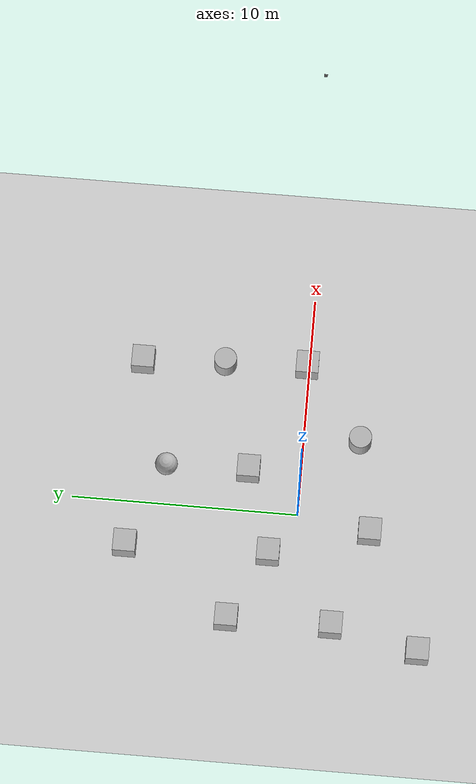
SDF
<?xml version="1.0"?>
<sdf version='1.9'>
  <world name='empty_world'>
    <model name='aerial_camera'>
      <static>true</static>
      <pose>0 0 50 0 1.5708 0</pose>
      <link name='camera_link'>
        <visual name='camera_visual'>
          <geometry>
            <box>
              <size>0.1 0.1 0.05</size>
            </box>
          </geometry>
          <material>
            <ambient>0.2 0.2 0.2 1</ambient>
            <diffuse>0.4 0.4 0.4 1</diffuse>
            <specular>0.8 0.8 0.8 1</specular>
          </material>
        </visual>

        <sensor name='aerial_camera_sensor' type='camera'>
          <pose>0 0 0 0 0 0</pose>
          <camera>
            <horizontal_fov>1.047</horizontal_fov>
            <image>
              <width>1920</width>
              <height>1080</height>
              <format>R8G8B8</format>
            </image>
            <clip>
              <near>0.1</near>
              <far>1000</far>
            </clip>
            <noise>
              <type>gaussian</type>
              <mean>0.0</mean>
              <stddev>0.007</stddev>
            </noise>
          </camera>
          <always_on>1</always_on>
          <update_rate>30</update_rate>
          <visualize>true</visualize>
          <topic>/drone_image</topic>

        </sensor>
      </link>
    </model>
    <model name='ground_plane'>
      <static>true</static>
      <link name='link'>
        <collision name='collision'>
          <geometry>
            <plane>
              <normal>0 0 1</normal>
              <size>1 1</size>
            </plane>
          </geometry>
          <surface>
            <friction>
              <ode/>
            </friction>
            <bounce/>
            <contact/>
          </surface>
        </collision>
        <visual name='visual'>
          <geometry>
            <plane>
              <normal>0 0 1</normal>
              <size>100 100</size>
            </plane>
          </geometry>
          <material>
            <ambient>0.8 0.8 0.8 1</ambient>
            <diffuse>0.8 0.8 0.8 1</diffuse>
            <specular>0.8 0.8 0.8 1</specular>
          </material>
        </visual>
        <pose>0 0 0 0 -0 0</pose>
        <inertial>
          <pose>0 0 0 0 -0 0</pose>
          <mass>1</mass>
          <inertia>
            <ixx>1</ixx>
            <ixy>0</ixy>
            <ixz>0</ixz>
            <iyy>1</iyy>
            <iyz>0</iyz>
            <izz>1</izz>
          </inertia>
        </inertial>
        <enable_wind>false</enable_wind>
      </link>
      <pose>0 0 0 0 -0 0</pose>
      <self_collide>false</self_collide>
    </model>
    <model name='box'>
      <pose>1.83264 2.33237 0.5 0 0 -0</pose>
      <link name='box_link'>
        <inertial>
          <inertia>
            <ixx>0.16666</ixx>
            <ixy>0</ixy>
            <ixz>0</ixz>
            <iyy>0.16666</iyy>
            <iyz>0</iyz>
            <izz>0.16666</izz>
          </inertia>
          <mass>1</mass>
          <pose>0 0 0 0 -0 0</pose>
        </inertial>
        <collision name='box_collision'>
          <geometry>
            <box>
              <size>1 1 1</size>
            </box>
          </geometry>
          <surface>
            <friction>
              <ode/>
            </friction>
            <bounce/>
            <contact/>
          </surface>
        </collision>
        <visual name='box_visual'>
          <geometry>
            <box>
              <size>1 1 1</size>
            </box>
          </geometry>
          <material>
            <ambient>0.3 0.3 0.3 1</ambient>
            <diffuse>0.7 0.7 0.7 1</diffuse>
            <specular>1 1 1 1</specular>
          </material>
        </visual>
        <pose>0 0 0 0 -0 0</pose>
        <enable_wind>false</enable_wind>
      </link>
      <static>false</static>
      <self_collide>false</self_collide>
    </model>
    <model name='box_0'>
      <pose>6.85107 0.116758 0.5 0 0 -0</pose>
      <link name='box_link'>
        <inertial>
          <inertia>
            <ixx>0.16666</ixx>
            <ixy>0</ixy>
            <ixz>0</ixz>
            <iyy>0.16666</iyy>
            <iyz>0</iyz>
            <izz>0.16666</izz>
          </inertia>
          <mass>1</mass>
          <pose>0 0 0 0 -0 0</pose>
        </inertial>
        <collision name='box_collision'>
          <geometry>
            <box>
              <size>1 1 1</size>
            </box>
          </geometry>
          <surface>
            <friction>
              <ode/>
            </friction>
            <bounce/>
            <contact/>
          </surface>
        </collision>
        <visual name='box_visual'>
          <geometry>
            <box>
              <size>1 1 1</size>
            </box>
          </geometry>
          <material>
            <ambient>0.3 0.3 0.3 1</ambient>
            <diffuse>0.7 0.7 0.7 1</diffuse>
            <specular>1 1 1 1</specular>
          </material>
          <plugin
            filename="ignition-gazebo-thermal-system"
            name="gz::sim::systems::Thermal">
            <temperature>285.0</temperature>
          </plugin>
        </visual>
        <pose>0 0 0 0 -0 0</pose>
        <enable_wind>false</enable_wind>
      </link>
      <static>false</static>
      <self_collide>false</self_collide>
    </model>
    <model name='cylinder'>
      <pose>3.54238 -2.48524 0.499999 0 0 0</pose>
      <link name='cylinder_link'>
        <inertial>
          <inertia>
            <ixx>0.14580000000000001</ixx>
            <ixy>0</ixy>
            <ixz>0</ixz>
            <iyy>0.14580000000000001</iyy>
            <iyz>0</iyz>
            <izz>0.125</izz>
          </inertia>
          <mass>1</mass>
          <pose>0 0 0 0 -0 0</pose>
        </inertial>
        <collision name='cylinder_collision'>
          <geometry>
            <cylinder>
              <radius>0.5</radius>
              <length>1</length>
            </cylinder>
          </geometry>
          <surface>
            <friction>
              <ode/>
            </friction>
            <bounce/>
            <contact/>
          </surface>
        </collision>
        <visual name='cylinder_visual'>
          <geometry>
            <cylinder>
              <radius>0.5</radius>
              <length>1</length>
            </cylinder>
          </geometry>
          <material>
            <ambient>0.3 0.3 0.3 1</ambient>
            <diffuse>0.7 0.7 0.7 1</diffuse>
            <specular>1 1 1 1</specular>
          </material>
        </visual>
        <pose>0 0 0 0 -0 0</pose>
        <enable_wind>false</enable_wind>
      </link>
      <static>false</static>
      <self_collide>false</self_collide>
    </model>
    <model name='box_1'>
      <pose>-1.9055 1.16814 0.5 0 0 -0</pose>
      <link name='box_link'>
        <inertial>
          <inertia>
            <ixx>0.16666</ixx>
            <ixy>0</ixy>
            <ixz>0</ixz>
            <iyy>0.16666</iyy>
            <iyz>0</iyz>
            <izz>0.16666</izz>
          </inertia>
          <mass>1</mass>
          <pose>0 0 0 0 -0 0</pose>
        </inertial>
        <collision name='box_collision'>
          <geometry>
            <box>
              <size>1 1 1</size>
            </box>
          </geometry>
          <surface>
            <friction>
              <ode/>
            </friction>
            <bounce/>
            <contact/>
          </surface>
        </collision>
        <visual name='box_visual'>
          <geometry>
            <box>
              <size>1 1 1</size>
            </box>
          </geometry>
          <material>
            <ambient>0.3 0.3 0.3 1</ambient>
            <diffuse>0.7 0.7 0.7 1</diffuse>
            <specular>1 1 1 1</specular>
          </material>
        </visual>
        <pose>0 0 0 0 -0 0</pose>
        <enable_wind>false</enable_wind>
      </link>
      <static>false</static>
      <self_collide>false</self_collide>
    </model>
    <model name='box_2'>
      <pose>-0.59546 -3.2054 0.5 0 0 -0</pose>
      <link name='box_link'>
        <inertial>
          <inertia>
            <ixx>0.16666</ixx>
            <ixy>0</ixy>
            <ixz>0</ixz>
            <iyy>0.16666</iyy>
            <iyz>0</iyz>
            <izz>0.16666</izz>
          </inertia>
          <mass>1</mass>
          <pose>0 0 0 0 -0 0</pose>
        </inertial>
        <collision name='box_collision'>
          <geometry>
            <box>
              <size>1 1 1</size>
            </box>
          </geometry>
          <surface>
            <friction>
              <ode/>
            </friction>
            <bounce/>
            <contact/>
          </surface>
        </collision>
        <visual name='box_visual'>
          <geometry>
            <box>
              <size>1 1 1</size>
            </box>
          </geometry>
          <material>
            <ambient>0.3 0.3 0.3 1</ambient>
            <diffuse>0.7 0.7 0.7 1</diffuse>
            <specular>1 1 1 1</specular>
          </material>
        </visual>
        <pose>0 0 0 0 -0 0</pose>
        <enable_wind>false</enable_wind>
      </link>
      <static>false</static>
      <self_collide>false</self_collide>
    </model>
    <model name='box_3'>
      <pose>-4.96532 -1.81738 0.5 0 0 -0</pose>
      <link name='box_link'>
        <inertial>
          <inertia>
            <ixx>0.16666</ixx>
            <ixy>0</ixy>
            <ixz>0</ixz>
            <iyy>0.16666</iyy>
            <iyz>0</iyz>
            <izz>0.16666</izz>
          </inertia>
          <mass>1</mass>
          <pose>0 0 0 0 -0 0</pose>
        </inertial>
        <collision name='box_collision'>
          <geometry>
            <box>
              <size>1 1 1</size>
            </box>
          </geometry>
          <surface>
            <friction>
              <ode/>
            </friction>
            <bounce/>
            <contact/>
          </surface>
        </collision>
        <visual name='box_visual'>
          <geometry>
            <box>
              <size>1 1 1</size>
            </box>
          </geometry>
          <material>
            <ambient>0.3 0.3 0.3 1</ambient>
            <diffuse>0.7 0.7 0.7 1</diffuse>
            <specular>1 1 1 1</specular>
          </material>
        </visual>
        <pose>0 0 0 0 -0 0</pose>
        <enable_wind>false</enable_wind>
      </link>
      <static>false</static>
      <self_collide>false</self_collide>
    </model>
    <model name='box_4'>
      <pose>-4.99714 2.75581 0.5 0 0 -0</pose>
      <link name='box_link'>
        <inertial>
          <inertia>
            <ixx>0.16666</ixx>
            <ixy>0</ixy>
            <ixz>0</ixz>
            <iyy>0.16666</iyy>
            <iyz>0</iyz>
            <izz>0.16666</izz>
          </inertia>
          <mass>1</mass>
          <pose>0 0 0 0 -0 0</pose>
        </inertial>
        <collision name='box_collision'>
          <geometry>
            <box>
              <size>1 1 1</size>
            </box>
          </geometry>
          <surface>
            <friction>
              <ode/>
            </friction>
            <bounce/>
            <contact/>
          </surface>
        </collision>
        <visual name='box_visual'>
          <geometry>
            <box>
              <size>1 1 1</size>
            </box>
          </geometry>
          <material>
            <ambient>0.3 0.3 0.3 1</ambient>
            <diffuse>0.7 0.7 0.7 1</diffuse>
            <specular>1 1 1 1</specular>
          </material>
        </visual>
        <pose>0 0 0 0 -0 0</pose>
        <enable_wind>false</enable_wind>
      </link>
      <static>false</static>
      <self_collide>false</self_collide>
    </model>
    <model name='cylinder_0'>
      <pose>6.69563 3.76909 0.499999 0 -0 0</pose>
      <link name='cylinder_link'>
        <inertial>
          <inertia>
            <ixx>0.14580000000000001</ixx>
            <ixy>0</ixy>
            <ixz>0</ixz>
            <iyy>0.14580000000000001</iyy>
            <iyz>0</iyz>
            <izz>0.125</izz>
          </inertia>
          <mass>1</mass>
          <pose>0 0 0 0 -0 0</pose>
        </inertial>
        <collision name='cylinder_collision'>
          <geometry>
            <cylinder>
              <radius>0.5</radius>
              <length>1</length>
            </cylinder>
          </geometry>
          <surface>
            <friction>
              <ode/>
            </friction>
            <bounce/>
            <contact/>
          </surface>
        </collision>
        <visual name='cylinder_visual'>
          <geometry>
            <cylinder>
              <radius>0.5</radius>
              <length>1</length>
            </cylinder>
          </geometry>
          <material>
            <ambient>0.3 0.3 0.3 1</ambient>
            <diffuse>0.7 0.7 0.7 1</diffuse>
            <specular>1 1 1 1</specular>
          </material>
        </visual>
        <pose>0 0 0 0 -0 0</pose>
        <enable_wind>false</enable_wind>
      </link>
      <static>false</static>
      <self_collide>false</self_collide>
    </model>
    <model name='sphere'>
      <pose>1.73464 5.96992 0.5 0 -0 0</pose>
      <link name='sphere_link'>
        <inertial>
          <inertia>
            <ixx>0.10000000000000001</ixx>
            <ixy>0</ixy>
            <ixz>0</ixz>
            <iyy>0.10000000000000001</iyy>
            <iyz>0</iyz>
            <izz>0.10000000000000001</izz>
          </inertia>
          <mass>1</mass>
          <pose>0 0 0 0 -0 0</pose>
        </inertial>
        <collision name='sphere_collision'>
          <geometry>
            <sphere>
              <radius>0.5</radius>
            </sphere>
          </geometry>
          <surface>
            <friction>
              <ode/>
            </friction>
            <bounce/>
            <contact/>
          </surface>
        </collision>
        <visual name='sphere_visual'>
          <geometry>
            <sphere>
              <radius>0.5</radius>
            </sphere>
          </geometry>
          <material>
            <ambient>0.3 0.3 0.3 1</ambient>
            <diffuse>0.7 0.7 0.7 1</diffuse>
            <specular>1 1 1 1</specular>
          </material>
        </visual>
        <pose>0 0 0 0 -0 0</pose>
        <enable_wind>false</enable_wind>
      </link>
      <static>false</static>
      <self_collide>false</self_collide>
    </model>
    <model name='box_5'>
      <pose>-5.81817 -5.66246 0.5 0 0 -0</pose>
      <link name='box_link'>
        <inertial>
          <inertia>
            <ixx>0.16666</ixx>
            <ixy>0</ixy>
            <ixz>0</ixz>
            <iyy>0.16666</iyy>
            <iyz>0</iyz>
            <izz>0.16666</izz>
          </inertia>
          <mass>1</mass>
          <pose>0 0 0 0 -0 0</pose>
        </inertial>
        <collision name='box_collision'>
          <geometry>
            <box>
              <size>1 1 1</size>
            </box>
          </geometry>
          <surface>
            <friction>
              <ode/>
            </friction>
            <bounce/>
            <contact/>
          </surface>
        </collision>
        <visual name='box_visual'>
          <geometry>
            <box>
              <size>1 1 1</size>
            </box>
          </geometry>
          <material>
            <ambient>0.3 0.3 0.3 1</ambient>
            <diffuse>0.7 0.7 0.7 1</diffuse>
            <specular>1 1 1 1</specular>
          </material>
        </visual>
        <pose>0 0 0 0 -0 0</pose>
        <enable_wind>false</enable_wind>
      </link>
      <static>false</static>
      <self_collide>false</self_collide>
    </model>
    <model name='box_6'>
      <pose>-2.0269 7.4764 0.5 0 0 -0</pose>
      <link name='box_link'>
        <inertial>
          <inertia>
            <ixx>0.16666</ixx>
            <ixy>0</ixy>
            <ixz>0</ixz>
            <iyy>0.16666</iyy>
            <iyz>0</iyz>
            <izz>0.16666</izz>
          </inertia>
          <mass>1</mass>
          <pose>0 0 0 0 -0 0</pose>
        </inertial>
        <collision name='box_collision'>
          <geometry>
            <box>
              <size>1 1 1</size>
            </box>
          </geometry>
          <surface>
            <friction>
              <ode/>
            </friction>
            <bounce/>
            <contact/>
          </surface>
        </collision>
        <visual name='box_visual'>
          <geometry>
            <box>
              <size>1 1 1</size>
            </box>
          </geometry>
          <material>
            <ambient>0.3 0.3 0.3 1</ambient>
            <diffuse>0.7 0.7 0.7 1</diffuse>
            <specular>1 1 1 1</specular>
          </material>
        </visual>
        <pose>0 0 0 0 -0 0</pose>
        <enable_wind>false</enable_wind>
      </link>
      <static>false</static>
      <self_collide>false</self_collide>
    </model>
    <model name='box_7'>
      <pose>6.50129 7.42339 0.5 0 0 -0</pose>
      <link name='box_link'>
        <inertial>
          <inertia>
            <ixx>0.16666</ixx>
            <ixy>0</ixy>
            <ixz>0</ixz>
            <iyy>0.16666</iyy>
            <iyz>0</iyz>
            <izz>0.16666</izz>
          </inertia>
          <mass>1</mass>
          <pose>0 0 0 0 -0 0</pose>
        </inertial>
        <collision name='box_collision'>
          <geometry>
            <box>
              <size>1 1 1</size>
            </box>
          </geometry>
          <surface>
            <friction>
              <ode/>
            </friction>
            <bounce/>
            <contact/>
          </surface>
        </collision>
        <visual name='box_visual'>
          <geometry>
            <box>
              <size>1 1 1</size>
            </box>
          </geometry>
          <material>
            <ambient>0.3 0.3 0.3 1</ambient>
            <diffuse>0.7 0.7 0.7 1</diffuse>
            <specular>1 1 1 1</specular>
          </material>
        </visual>
        <pose>0 0 0 0 -0 0</pose>
        <enable_wind>false</enable_wind>
      </link>
      <static>false</static>
      <self_collide>false</self_collide>
    </model>
    <light name='sun' type='directional'>
      <pose>0 0 10 0 -0 0</pose>
      <cast_shadows>true</cast_shadows>
      <intensity>1</intensity>
      <direction>-0.5 0.1 -0.9</direction>
      <diffuse>0.8 0.8 0.8 1</diffuse>
      <specular>0.2 0.2 0.2 1</specular>
      <attenuation>
        <range>1000</range>
        <linear>0.01</linear>
        <constant>0.90000000000000002</constant>
        <quadratic>0.001</quadratic>
      </attenuation>
      <spot>
        <inner_angle>0</inner_angle>
        <outer_angle>0</outer_angle>
        <falloff>0</falloff>
      </spot>
    </light>
      <spherical_coordinates>
      <surface_model>EARTH_WGS84</surface_model>
      <world_frame_orientation>ENU</world_frame_orientation>
      <latitude_deg>47.478950</latitude_deg>
      <longitude_deg>19.057785</longitude_deg>
      <elevation>0</elevation>
      <heading_deg>0</heading_deg>
  </spherical_coordinates>
  <atmosphere type="adiabatic">
  <temperature>300</temperature>
  <temperature_gradient>0.1</temperature_gradient>
  </atmosphere>
  </world>
</sdf>
